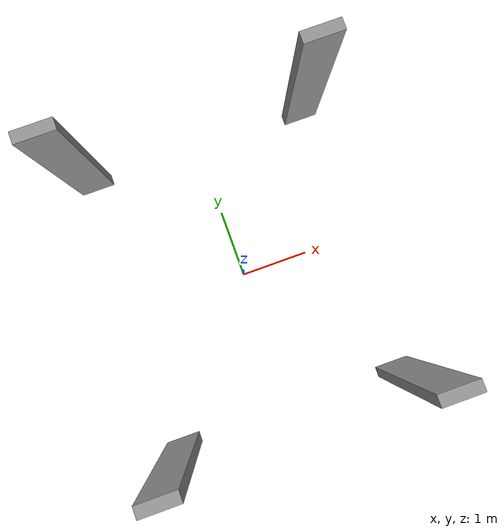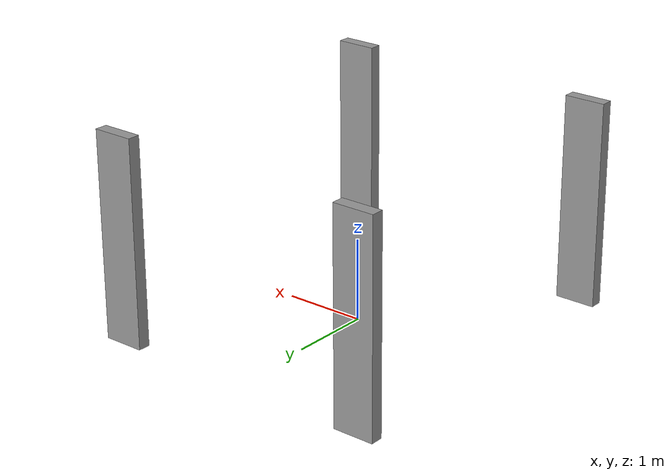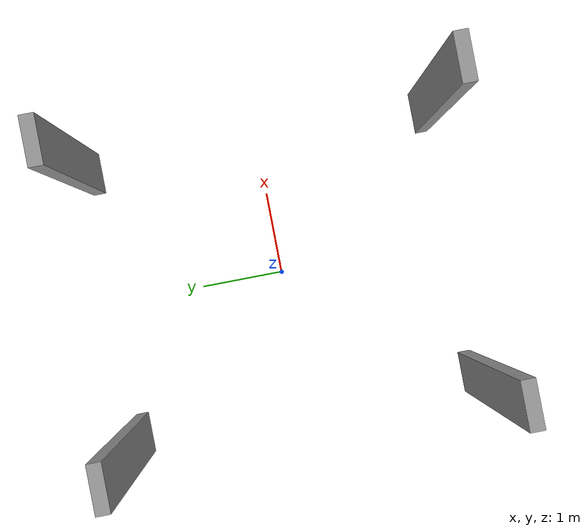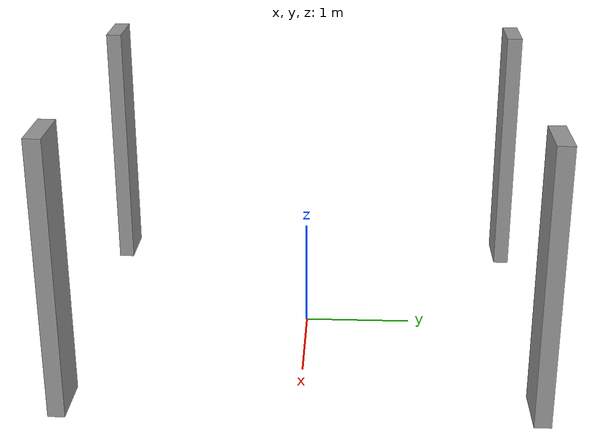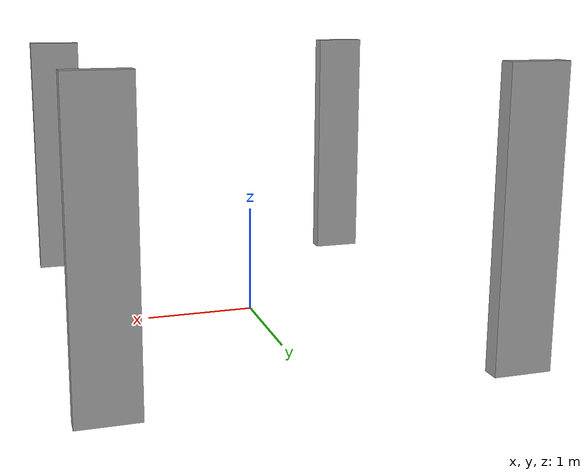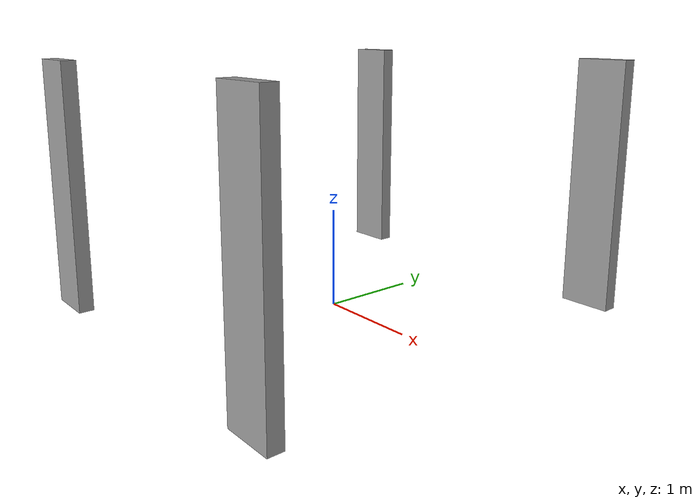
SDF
<?xml version='1.0'?>
<sdf version='1.7'>
  <model name='walls'>
    <pose>-0.011594 0.00054 0 0 -0 0</pose>
    <link name='Wall_10'>
      <collision name='Wall_10_Collision'>
        <geometry>
          <box>
            <size>0.5 0.15 2.5</size>
          </box>
        </geometry>
        <pose>0 0 1.25 0 -0 0</pose>
      </collision>
      <visual name='Wall_10_Visual'>
        <pose>0 0 1.25 0 -0 0</pose>
        <geometry>
          <box>
            <size>0.5 0.15 2.5</size>
          </box>
        </geometry>
        <material>
          <script>
            <uri>file://media/materials/scripts/gazebo.material</uri>
            <name>Gazebo/Grey</name>
          </script>
          <ambient>1 1 1 1</ambient>
        </material>
        <meta>
          <layer>0</layer>
        </meta>
      </visual>
      <pose>1.65384 2.05862 0 0 -0 0</pose>
    </link>
    <link name='Wall_4'>
      <collision name='Wall_4_Collision'>
        <geometry>
          <box>
            <size>0.5 0.15 2.5</size>
          </box>
        </geometry>
        <pose>0 0 1.25 0 -0 0</pose>
      </collision>
      <visual name='Wall_4_Visual'>
        <pose>0 0 1.25 0 -0 0</pose>
        <geometry>
          <box>
            <size>0.5 0.15 2.5</size>
          </box>
        </geometry>
        <material>
          <script>
            <uri>file://media/materials/scripts/gazebo.material</uri>
            <name>Gazebo/Grey</name>
          </script>
          <ambient>1 1 1 1</ambient>
        </material>
        <meta>
          <layer>0</layer>
        </meta>
      </visual>
      <pose>-1.65384 -2.05862 0 0 -0 0</pose>
    </link>
    <link name='Wall_6'>
      <collision name='Wall_6_Collision'>
        <geometry>
          <box>
            <size>0.5 0.15 2.5</size>
          </box>
        </geometry>
        <pose>0 0 1.25 0 -0 0</pose>
      </collision>
      <visual name='Wall_6_Visual'>
        <pose>0 0 1.25 0 -0 0</pose>
        <geometry>
          <box>
            <size>0.5 0.15 2.5</size>
          </box>
        </geometry>
        <material>
          <script>
            <uri>file://media/materials/scripts/gazebo.material</uri>
            <name>Gazebo/Grey</name>
          </script>
          <ambient>1 1 1 1</ambient>
        </material>
        <meta>
          <layer>0</layer>
        </meta>
      </visual>
      <pose>1.65384 -2.05862 0 0 -0 0</pose>
    </link>
    <link name='Wall_8'>
      <collision name='Wall_8_Collision'>
        <geometry>
          <box>
            <size>0.5 0.15 2.5</size>
          </box>
        </geometry>
        <pose>0 0 1.25 0 -0 0</pose>
      </collision>
      <visual name='Wall_8_Visual'>
        <pose>0 0 1.25 0 -0 0</pose>
        <geometry>
          <box>
            <size>0.5 0.15 2.5</size>
          </box>
        </geometry>
        <material>
          <script>
            <uri>file://media/materials/scripts/gazebo.material</uri>
            <name>Gazebo/Grey</name>
          </script>
          <ambient>1 1 1 1</ambient>
        </material>
        <meta>
          <layer>0</layer>
        </meta>
      </visual>
      <pose>-1.65384 2.05862 0 0 -0 0</pose>
    </link>
    <static>1</static>
  </model>
</sdf>
